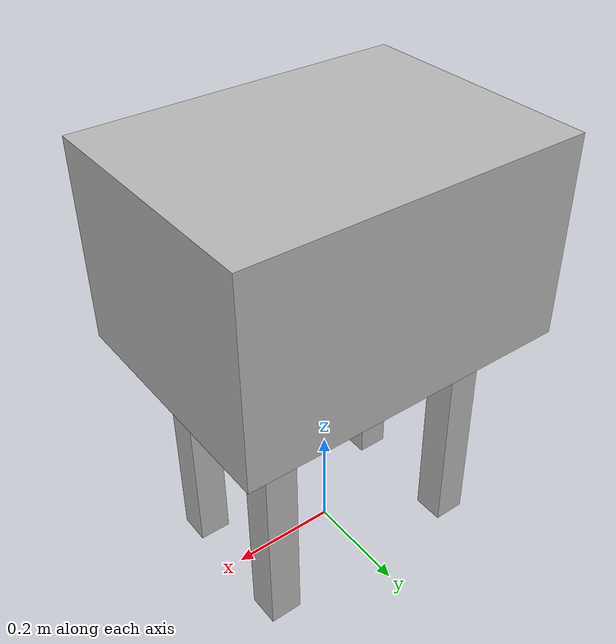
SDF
<?xml version="1.0"?>
<sdf version="1.6">
  <model name="rwc2018/sink">
    <link name="1_link">
      <collision name="1_col">
        <geometry>
          <box>
            <size>0.62 0.46 0.37</size>
          </box>
        </geometry>
      </collision>
      <visual name="1_vis">
        <geometry>
          <box>
            <size>0.62 0.46 0.37</size>
          </box>
        </geometry>
      </visual>
      <pose>0 0 0.635 0 0 0</pose>
    </link>
    <link name="2_link">
      <collision name="2_col">
        <geometry>
          <box>
            <size>0.06 0.06 0.45</size>
          </box>
        </geometry>
      </collision>
      <visual name="2_vis">
        <geometry>
          <box>
            <size>0.06 0.06 0.45</size>
          </box>
        </geometry>
      </visual>
      <pose>-0.2 -0.12 0.225 0 0 0</pose>
    </link>
    <link name="3_link">
      <collision name="3_col">
        <geometry>
          <box>
            <size>0.06 0.06 0.45</size>
          </box>
        </geometry>
      </collision>
      <visual name="3_vis">
        <geometry>
          <box>
            <size>0.06 0.06 0.45</size>
          </box>
        </geometry>
      </visual>
      <pose>-0.2 0.12 0.225 0 0 0</pose>
    </link>
    <link name="4_link">
      <collision name="4_col">
        <geometry>
          <box>
            <size>0.06 0.06 0.45</size>
          </box>
        </geometry>
      </collision>
      <visual name="4_vis">
        <geometry>
          <box>
            <size>0.06 0.06 0.45</size>
          </box>
        </geometry>
      </visual>
      <pose>0.2 -0.12 0.225 0 0 0</pose>
    </link>
    <link name="5_link">
      <collision name="5_col">
        <geometry>
          <box>
            <size>0.06 0.06 0.45</size>
          </box>
        </geometry>
      </collision>
      <visual name="5_vis">
        <geometry>
          <box>
            <size>0.06 0.06 0.45</size>
          </box>
        </geometry>
      </visual>
      <pose>0.2 0.12 0.225 0 0 0</pose>
    </link>
    <link name="on_top_of">
      <virtual_volume name="on_top_of_vv">
        <geometry>
          <box>
            <size>0.56 0.44 0.25</size>
          </box>
        </geometry>
        <pose>0.0 0.0 0.965 0 0 0</pose>
      </virtual_volume>
    </link>
    <link name="in_front_of">
      <virtual_volume name="in_front_of_vv">
        <geometry>
          <box>
            <size>0.2 0.32 0.01</size>
          </box>
        </geometry>
        <pose>0.8 0.0 0.005 0 0 0</pose>
      </virtual_volume>
    </link>
    <static>true</static>
  </model>
</sdf>
